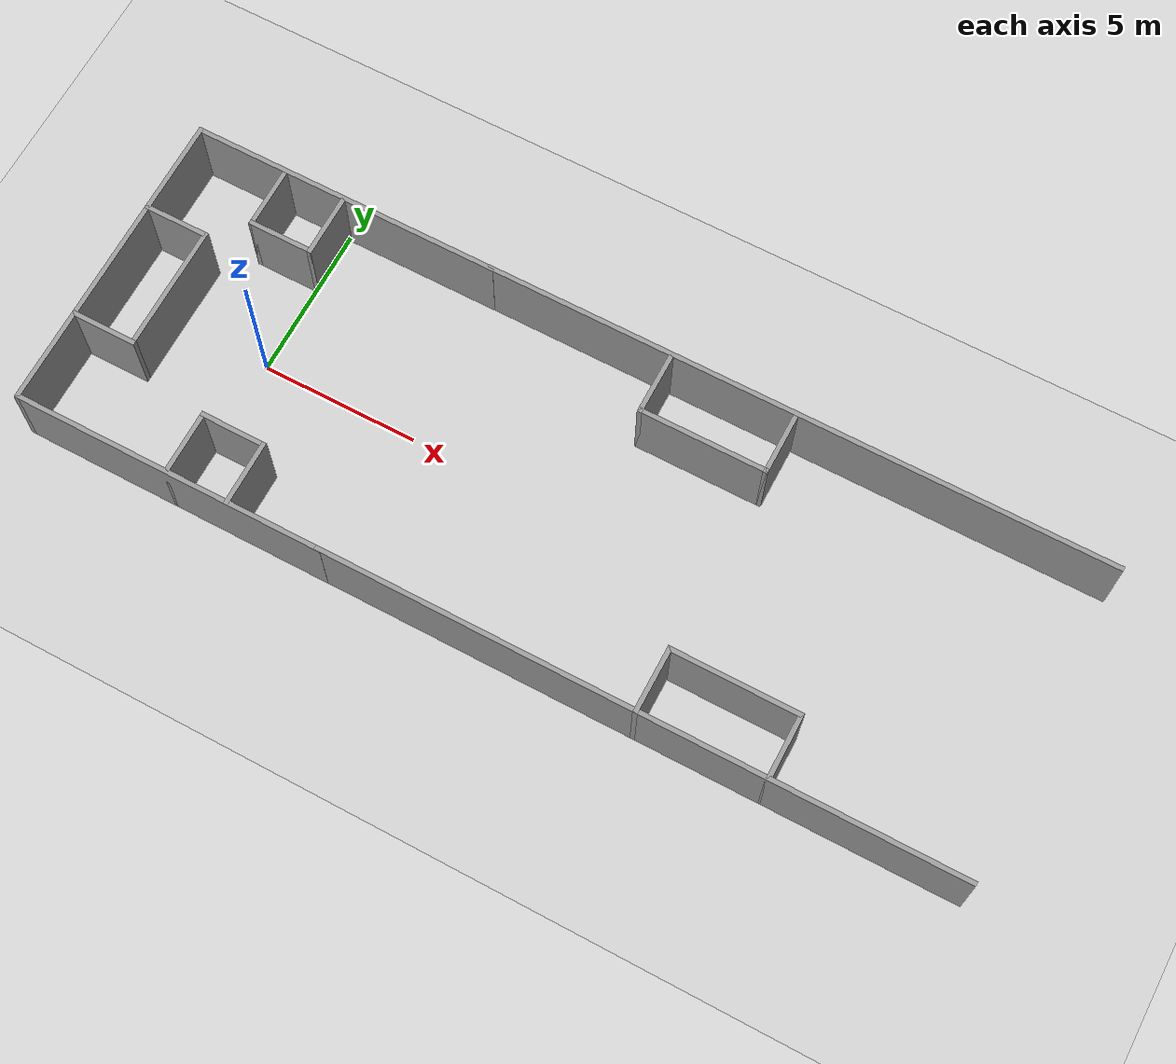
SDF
<sdf version="1.6">
 <world name="default">
  <model name="ground_plane">
   <static>1</static>
   <link name="link">
    <collision name="collision">
     <geometry><plane><normal>0 0 1</normal><size>100 100</size></plane></geometry>
     <surface><friction><ode><mu>100</mu><mu2>50</mu2></ode></friction></surface>
    </collision>
    <visual name="visual">
     <cast_shadows>0</cast_shadows>
     <geometry><plane><normal>0 0 1</normal><size>100 100</size></plane></geometry>
     <material>
      <script><uri>file://media/materials/scripts/gazebo.material</uri><name>Gazebo/Grey</name></script>
     </material>
    </visual>
   </link>
  </model>
  <model name="part_u_1">
   <link name="Wall_78">
    <collision name="Wall_78_Collision">
     <geometry><box><size>10.15 0.15 2.5</size></box></geometry>
     <pose>0 0 1.25 0 -0 0</pose>
    </collision>
    <visual name="Wall_78_Visual">
     <pose>0 0 1.25 0 -0 0</pose>
     <geometry><box><size>10.15 0.15 2.5</size></box></geometry>
     <material>
      <script><uri>file://media/materials/scripts/gazebo.material</uri><name>Gazebo/Grey</name></script>
      <ambient>1 1 1 1</ambient>
     </material>
    </visual>
    <pose>0 -5 0 0 -0 3.14159</pose>
   </link>
   <link name="Wall_79">
    <collision name="Wall_79_Collision">
     <geometry><box><size>10.15 0.15 2.5</size></box></geometry>
     <pose>0 0 1.25 0 -0 0</pose>
    </collision>
    <visual name="Wall_79_Visual">
     <pose>0 0 1.25 0 -0 0</pose>
     <geometry><box><size>10.15 0.15 2.5</size></box></geometry>
     <material>
      <script><uri>file://media/materials/scripts/gazebo.material</uri><name>Gazebo/Grey</name></script>
      <ambient>1 1 1 1</ambient>
     </material>
    </visual>
    <pose>-5 0 0 0 -0 1.5708</pose>
   </link>
   <link name="Wall_80">
    <collision name="Wall_80_Collision">
     <geometry><box><size>10.15 0.15 2.5</size></box></geometry>
     <pose>0 0 1.25 0 -0 0</pose>
    </collision>
    <visual name="Wall_80_Visual">
     <pose>0 0 1.25 0 -0 0</pose>
     <geometry><box><size>10.15 0.15 2.5</size></box></geometry>
     <material>
      <script><uri>file://media/materials/scripts/gazebo.material</uri><name>Gazebo/Grey</name></script>
      <ambient>1 1 1 1</ambient>
     </material>
    </visual>
    <pose>0 5 0 0 -0 0</pose>
   </link>
   <link name="Wall_82">
    <collision name="Wall_82_Collision">
     <geometry><box><size>2.15 0.15 2.5</size></box></geometry>
     <pose>0 0 1.25 0 -0 0</pose>
    </collision>
    <visual name="Wall_82_Visual">
     <pose>0 0 1.25 0 -0 0</pose>
     <geometry><box><size>2.15 0.15 2.5</size></box></geometry>
     <material>
      <script><uri>file://media/materials/scripts/gazebo.material</uri><name>Gazebo/Grey</name></script>
      <ambient>1 1 1 1</ambient>
     </material>
    </visual>
    <pose>-4 2 0 0 -0 0</pose>
   </link>
   <link name="Wall_83">
    <collision name="Wall_83_Collision">
     <geometry><box><size>4.15 0.15 2.5</size></box></geometry>
     <pose>0 0 1.25 0 -0 0</pose>
    </collision>
    <visual name="Wall_83_Visual">
     <pose>0 0 1.25 0 -0 0</pose>
     <geometry><box><size>4.15 0.15 2.5</size></box></geometry>
     <material>
      <script><uri>file://media/materials/scripts/gazebo.material</uri><name>Gazebo/Grey</name></script>
      <ambient>1 1 1 1</ambient>
     </material>
    </visual>
    <pose>-3 0 0 0 0 -1.5708</pose>
   </link>
   <link name="Wall_84">
    <collision name="Wall_84_Collision">
     <geometry><box><size>2.15 0.15 2.5</size></box></geometry>
     <pose>0 0 1.25 0 -0 0</pose>
    </collision>
    <visual name="Wall_84_Visual">
     <pose>0 0 1.25 0 -0 0</pose>
     <geometry><box><size>2.15 0.15 2.5</size></box></geometry>
     <material>
      <script><uri>file://media/materials/scripts/gazebo.material</uri><name>Gazebo/Grey</name></script>
      <ambient>1 1 1 1</ambient>
     </material>
    </visual>
    <pose>-4 -2 0 0 -0 3.14159</pose>
   </link>
   <link name="Wall_86">
    <collision name="Wall_86_Collision">
     <geometry><box><size>2.15 0.15 2.5</size></box></geometry>
     <pose>0 0 1.25 0 -0 0</pose>
    </collision>
    <visual name="Wall_86_Visual">
     <pose>0 0 1.25 0 -0 0</pose>
     <geometry><box><size>2.15 0.15 2.5</size></box></geometry>
     <material>
      <script><uri>file://media/materials/scripts/gazebo.material</uri><name>Gazebo/Grey</name></script>
      <ambient>1 1 1 1</ambient>
     </material>
    </visual>
    <pose>-2 4 0 0 0 -1.5708</pose>
   </link>
   <link name="Wall_87">
    <collision name="Wall_87_Collision">
     <geometry><box><size>2.15 0.15 2.5</size></box></geometry>
     <pose>0 0 1.25 0 -0 0</pose>
    </collision>
    <visual name="Wall_87_Visual">
     <pose>0 0 1.25 0 -0 0</pose>
     <geometry><box><size>2.15 0.15 2.5</size></box></geometry>
     <material>
      <script><uri>file://media/materials/scripts/gazebo.material</uri><name>Gazebo/Grey</name></script>
      <ambient>1 1 1 1</ambient>
     </material>
    </visual>
    <pose>-1 3 0 0 -0 0</pose>
   </link>
   <link name="Wall_88">
    <collision name="Wall_88_Collision">
     <geometry><box><size>2.15 0.15 2.5</size></box></geometry>
     <pose>0 0 1.25 0 -0 0</pose>
    </collision>
    <visual name="Wall_88_Visual">
     <pose>0 0 1.25 0 -0 0</pose>
     <geometry><box><size>2.15 0.15 2.5</size></box></geometry>
     <material>
      <script><uri>file://media/materials/scripts/gazebo.material</uri><name>Gazebo/Grey</name></script>
      <ambient>1 1 1 1</ambient>
     </material>
    </visual>
    <pose>0 4 0 0 -0 1.5708</pose>
   </link>
   <link name="Wall_90">
    <collision name="Wall_90_Collision">
     <geometry><box><size>2.15 0.15 2.5</size></box></geometry>
     <pose>0 0 1.25 0 -0 0</pose>
    </collision>
    <visual name="Wall_90_Visual">
     <pose>0 0 1.25 0 -0 0</pose>
     <geometry><box><size>2.15 0.15 2.5</size></box></geometry>
     <material>
      <script><uri>file://media/materials/scripts/gazebo.material</uri><name>Gazebo/Grey</name></script>
      <ambient>1 1 1 1</ambient>
     </material>
    </visual>
    <pose>0 -4 0 0 -0 1.5708</pose>
   </link>
   <link name="Wall_91">
    <collision name="Wall_91_Collision">
     <geometry><box><size>2.15 0.15 2.5</size></box></geometry>
     <pose>0 0 1.25 0 -0 0</pose>
    </collision>
    <visual name="Wall_91_Visual">
     <pose>0 0 1.25 0 -0 0</pose>
     <geometry><box><size>2.15 0.15 2.5</size></box></geometry>
     <material>
      <script><uri>file://media/materials/scripts/gazebo.material</uri><name>Gazebo/Grey</name></script>
      <ambient>1 1 1 1</ambient>
     </material>
    </visual>
    <pose>1 -3 0 0 -0 0</pose>
   </link>
   <link name="Wall_92">
    <collision name="Wall_92_Collision">
     <geometry><box><size>2.15 0.15 2.5</size></box></geometry>
     <pose>0 0 1.25 0 -0 0</pose>
    </collision>
    <visual name="Wall_92_Visual">
     <pose>0 0 1.25 0 -0 0</pose>
     <geometry><box><size>2.15 0.15 2.5</size></box></geometry>
     <material>
      <script><uri>file://media/materials/scripts/gazebo.material</uri><name>Gazebo/Grey</name></script>
      <ambient>1 1 1 1</ambient>
     </material>
    </visual>
    <pose>2 -4 0 0 0 -1.5708</pose>
   </link>
   <static>1</static>
  </model>
  <model name="part_line_0">
   <link name="Wall_15">
    <pose>0 -5 0 0 -0 0</pose>
    <visual name="Wall_15_Visual">
     <pose>0 0 1.25 0 -0 0</pose>
     <geometry><box><size>20.15 0.15 2.5</size></box></geometry>
     <material>
      <script><uri>file://media/materials/scripts/gazebo.material</uri><name>Gazebo/Grey</name></script>
      <ambient>1 1 1 1</ambient>
      <diffuse>0.7 0.7 0.7 1</diffuse>
      <specular>0.01 0.01 0.01 1</specular>
      <emissive>0 0 0 1</emissive>
     </material>
    </visual>
    <collision name="Wall_15_Collision">
     <pose>0 0 1.25 0 -0 0</pose>
     <geometry><box><size>20.15 0.15 2.5</size></box></geometry>
     <surface>
      <friction>
       <ode><mu>1</mu><mu2>1</mu2><fdir1>0 0 0</fdir1><slip1>0</slip1><slip2>0</slip2></ode>
       <torsional>
        <coefficient>1</coefficient>
        <patch_radius>0</patch_radius>
        <surface_radius>0</surface_radius>
        <use_patch_radius>1</use_patch_radius>
        <ode><slip>0</slip></ode>
       </torsional>
      </friction>
      <bounce><restitution_coefficient>0</restitution_coefficient><threshold>1e+06</threshold></bounce>
      <contact>
       <collide_without_contact>0</collide_without_contact>
       <collide_without_contact_bitmask>1</collide_without_contact_bitmask>
       <collide_bitmask>1</collide_bitmask>
       <ode>
        <soft_cfm>0</soft_cfm>
        <soft_erp>0.2</soft_erp>
        <kp>1e+13</kp>
        <kd>1</kd>
        <max_vel>0.01</max_vel>
        <min_depth>0</min_depth>
       </ode>
       <bullet>
        <split_impulse>1</split_impulse>
        <split_impulse_penetration_threshold>-0.01</split_impulse_penetration_threshold>
        <soft_cfm>0</soft_cfm>
        <soft_erp>0.2</soft_erp>
        <kp>1e+13</kp>
        <kd>1</kd>
       </bullet>
      </contact>
     </surface>
    </collision>
   </link>
   <link name="Wall_17">
    <pose>0 5 0 0 -0 0</pose>
    <visual name="Wall_17_Visual">
     <pose>0 0 1.25 0 -0 0</pose>
     <geometry><box><size>20.15 0.15 2.5</size></box></geometry>
     <material>
      <script><uri>file://media/materials/scripts/gazebo.material</uri><name>Gazebo/Grey</name></script>
      <ambient>1 1 1 1</ambient>
      <diffuse>0.7 0.7 0.7 1</diffuse>
      <specular>0.01 0.01 0.01 1</specular>
      <emissive>0 0 0 1</emissive>
     </material>
    </visual>
    <collision name="Wall_17_Collision">
     <pose>0 0 1.25 0 -0 0</pose>
     <geometry><box><size>20.15 0.15 2.5</size></box></geometry>
     <surface>
      <friction>
       <ode><mu>1</mu><mu2>1</mu2><fdir1>0 0 0</fdir1><slip1>0</slip1><slip2>0</slip2></ode>
       <torsional>
        <coefficient>1</coefficient>
        <patch_radius>0</patch_radius>
        <surface_radius>0</surface_radius>
        <use_patch_radius>1</use_patch_radius>
        <ode><slip>0</slip></ode>
       </torsional>
      </friction>
      <bounce><restitution_coefficient>0</restitution_coefficient><threshold>1e+06</threshold></bounce>
      <contact>
       <collide_without_contact>0</collide_without_contact>
       <collide_without_contact_bitmask>1</collide_without_contact_bitmask>
       <collide_bitmask>1</collide_bitmask>
       <ode>
        <soft_cfm>0</soft_cfm>
        <soft_erp>0.2</soft_erp>
        <kp>1e+13</kp>
        <kd>1</kd>
        <max_vel>0.01</max_vel>
        <min_depth>0</min_depth>
       </ode>
       <bullet>
        <split_impulse>1</split_impulse>
        <split_impulse_penetration_threshold>-0.01</split_impulse_penetration_threshold>
        <soft_cfm>0</soft_cfm>
        <soft_erp>0.2</soft_erp>
        <kp>1e+13</kp>
        <kd>1</kd>
       </bullet>
      </contact>
     </surface>
    </collision>
   </link>
   <link name="Wall_19">
    <pose>-4 4 0 0 0 -1.5708</pose>
    <visual name="Wall_19_Visual">
     <pose>0 0 1.25 0 -0 0</pose>
     <geometry><box><size>2.15 0.15 2.5</size></box></geometry>
     <material>
      <script><uri>file://media/materials/scripts/gazebo.material</uri><name>Gazebo/Grey</name></script>
      <ambient>1 1 1 1</ambient>
      <diffuse>0.7 0.7 0.7 1</diffuse>
      <specular>0.01 0.01 0.01 1</specular>
      <emissive>0 0 0 1</emissive>
     </material>
    </visual>
    <collision name="Wall_19_Collision">
     <pose>0 0 1.25 0 -0 0</pose>
     <geometry><box><size>2.15 0.15 2.5</size></box></geometry>
     <surface>
      <friction>
       <ode><mu>1</mu><mu2>1</mu2><fdir1>0 0 0</fdir1><slip1>0</slip1><slip2>0</slip2></ode>
       <torsional>
        <coefficient>1</coefficient>
        <patch_radius>0</patch_radius>
        <surface_radius>0</surface_radius>
        <use_patch_radius>1</use_patch_radius>
        <ode><slip>0</slip></ode>
       </torsional>
      </friction>
      <bounce><restitution_coefficient>0</restitution_coefficient><threshold>1e+06</threshold></bounce>
      <contact>
       <collide_without_contact>0</collide_without_contact>
       <collide_without_contact_bitmask>1</collide_without_contact_bitmask>
       <collide_bitmask>1</collide_bitmask>
       <ode>
        <soft_cfm>0</soft_cfm>
        <soft_erp>0.2</soft_erp>
        <kp>1e+13</kp>
        <kd>1</kd>
        <max_vel>0.01</max_vel>
        <min_depth>0</min_depth>
       </ode>
       <bullet>
        <split_impulse>1</split_impulse>
        <split_impulse_penetration_threshold>-0.01</split_impulse_penetration_threshold>
        <soft_cfm>0</soft_cfm>
        <soft_erp>0.2</soft_erp>
        <kp>1e+13</kp>
        <kd>1</kd>
       </bullet>
      </contact>
     </surface>
    </collision>
   </link>
   <link name="Wall_20">
    <pose>-2 3 0 0 -0 0</pose>
    <visual name="Wall_20_Visual">
     <pose>0 0 1.25 0 -0 0</pose>
     <geometry><box><size>4.15 0.15 2.5</size></box></geometry>
     <material>
      <script><uri>file://media/materials/scripts/gazebo.material</uri><name>Gazebo/Grey</name></script>
      <ambient>1 1 1 1</ambient>
      <diffuse>0.7 0.7 0.7 1</diffuse>
      <specular>0.01 0.01 0.01 1</specular>
      <emissive>0 0 0 1</emissive>
     </material>
    </visual>
    <collision name="Wall_20_Collision">
     <pose>0 0 1.25 0 -0 0</pose>
     <geometry><box><size>4.15 0.15 2.5</size></box></geometry>
     <surface>
      <friction>
       <ode><mu>1</mu><mu2>1</mu2><fdir1>0 0 0</fdir1><slip1>0</slip1><slip2>0</slip2></ode>
       <torsional>
        <coefficient>1</coefficient>
        <patch_radius>0</patch_radius>
        <surface_radius>0</surface_radius>
        <use_patch_radius>1</use_patch_radius>
        <ode><slip>0</slip></ode>
       </torsional>
      </friction>
      <bounce><restitution_coefficient>0</restitution_coefficient><threshold>1e+06</threshold></bounce>
      <contact>
       <collide_without_contact>0</collide_without_contact>
       <collide_without_contact_bitmask>1</collide_without_contact_bitmask>
       <collide_bitmask>1</collide_bitmask>
       <ode>
        <soft_cfm>0</soft_cfm>
        <soft_erp>0.2</soft_erp>
        <kp>1e+13</kp>
        <kd>1</kd>
        <max_vel>0.01</max_vel>
        <min_depth>0</min_depth>
       </ode>
       <bullet>
        <split_impulse>1</split_impulse>
        <split_impulse_penetration_threshold>-0.01</split_impulse_penetration_threshold>
        <soft_cfm>0</soft_cfm>
        <soft_erp>0.2</soft_erp>
        <kp>1e+13</kp>
        <kd>1</kd>
       </bullet>
      </contact>
     </surface>
    </collision>
   </link>
   <link name="Wall_21">
    <pose>0 4 0 0 -0 1.5708</pose>
    <visual name="Wall_21_Visual">
     <pose>0 0 1.25 0 -0 0</pose>
     <geometry><box><size>2.15 0.15 2.5</size></box></geometry>
     <material>
      <script><uri>file://media/materials/scripts/gazebo.material</uri><name>Gazebo/Grey</name></script>
      <ambient>1 1 1 1</ambient>
      <diffuse>0.7 0.7 0.7 1</diffuse>
      <specular>0.01 0.01 0.01 1</specular>
      <emissive>0 0 0 1</emissive>
     </material>
    </visual>
    <collision name="Wall_21_Collision">
     <pose>0 0 1.25 0 -0 0</pose>
     <geometry><box><size>2.15 0.15 2.5</size></box></geometry>
     <surface>
      <friction>
       <ode><mu>1</mu><mu2>1</mu2><fdir1>0 0 0</fdir1><slip1>0</slip1><slip2>0</slip2></ode>
       <torsional>
        <coefficient>1</coefficient>
        <patch_radius>0</patch_radius>
        <surface_radius>0</surface_radius>
        <use_patch_radius>1</use_patch_radius>
        <ode><slip>0</slip></ode>
       </torsional>
      </friction>
      <bounce><restitution_coefficient>0</restitution_coefficient><threshold>1e+06</threshold></bounce>
      <contact>
       <collide_without_contact>0</collide_without_contact>
       <collide_without_contact_bitmask>1</collide_without_contact_bitmask>
       <collide_bitmask>1</collide_bitmask>
       <ode>
        <soft_cfm>0</soft_cfm>
        <soft_erp>0.2</soft_erp>
        <kp>1e+13</kp>
        <kd>1</kd>
        <max_vel>0.01</max_vel>
        <min_depth>0</min_depth>
       </ode>
       <bullet>
        <split_impulse>1</split_impulse>
        <split_impulse_penetration_threshold>-0.01</split_impulse_penetration_threshold>
        <soft_cfm>0</soft_cfm>
        <soft_erp>0.2</soft_erp>
        <kp>1e+13</kp>
        <kd>1</kd>
       </bullet>
      </contact>
     </surface>
    </collision>
   </link>
   <link name="Wall_23">
    <pose>0 -4 0 0 -0 1.5708</pose>
    <visual name="Wall_23_Visual">
     <pose>0 0 1.25 0 -0 0</pose>
     <geometry><box><size>2.15 0.15 2.5</size></box></geometry>
     <material>
      <script><uri>file://media/materials/scripts/gazebo.material</uri><name>Gazebo/Grey</name></script>
      <ambient>1 1 1 1</ambient>
      <diffuse>0.7 0.7 0.7 1</diffuse>
      <specular>0.01 0.01 0.01 1</specular>
      <emissive>0 0 0 1</emissive>
     </material>
    </visual>
    <collision name="Wall_23_Collision">
     <pose>0 0 1.25 0 -0 0</pose>
     <geometry><box><size>2.15 0.15 2.5</size></box></geometry>
     <surface>
      <friction>
       <ode><mu>1</mu><mu2>1</mu2><fdir1>0 0 0</fdir1><slip1>0</slip1><slip2>0</slip2></ode>
       <torsional>
        <coefficient>1</coefficient>
        <patch_radius>0</patch_radius>
        <surface_radius>0</surface_radius>
        <use_patch_radius>1</use_patch_radius>
        <ode><slip>0</slip></ode>
       </torsional>
      </friction>
      <bounce><restitution_coefficient>0</restitution_coefficient><threshold>1e+06</threshold></bounce>
      <contact>
       <collide_without_contact>0</collide_without_contact>
       <collide_without_contact_bitmask>1</collide_without_contact_bitmask>
       <collide_bitmask>1</collide_bitmask>
       <ode>
        <soft_cfm>0</soft_cfm>
        <soft_erp>0.2</soft_erp>
        <kp>1e+13</kp>
        <kd>1</kd>
        <max_vel>0.01</max_vel>
        <min_depth>0</min_depth>
       </ode>
       <bullet>
        <split_impulse>1</split_impulse>
        <split_impulse_penetration_threshold>-0.01</split_impulse_penetration_threshold>
        <soft_cfm>0</soft_cfm>
        <soft_erp>0.2</soft_erp>
        <kp>1e+13</kp>
        <kd>1</kd>
       </bullet>
      </contact>
     </surface>
    </collision>
   </link>
   <link name="Wall_24">
    <pose>2 -3 0 0 -0 0</pose>
    <visual name="Wall_24_Visual">
     <pose>0 0 1.25 0 -0 0</pose>
     <geometry><box><size>4.15 0.15 2.5</size></box></geometry>
     <material>
      <script><uri>file://media/materials/scripts/gazebo.material</uri><name>Gazebo/Grey</name></script>
      <ambient>1 1 1 1</ambient>
      <diffuse>0.7 0.7 0.7 1</diffuse>
      <specular>0.01 0.01 0.01 1</specular>
      <emissive>0 0 0 1</emissive>
     </material>
    </visual>
    <collision name="Wall_24_Collision">
     <pose>0 0 1.25 0 -0 0</pose>
     <geometry><box><size>4.15 0.15 2.5</size></box></geometry>
     <surface>
      <friction>
       <ode><mu>1</mu><mu2>1</mu2><fdir1>0 0 0</fdir1><slip1>0</slip1><slip2>0</slip2></ode>
       <torsional>
        <coefficient>1</coefficient>
        <patch_radius>0</patch_radius>
        <surface_radius>0</surface_radius>
        <use_patch_radius>1</use_patch_radius>
        <ode><slip>0</slip></ode>
       </torsional>
      </friction>
      <bounce><restitution_coefficient>0</restitution_coefficient><threshold>1e+06</threshold></bounce>
      <contact>
       <collide_without_contact>0</collide_without_contact>
       <collide_without_contact_bitmask>1</collide_without_contact_bitmask>
       <collide_bitmask>1</collide_bitmask>
       <ode>
        <soft_cfm>0</soft_cfm>
        <soft_erp>0.2</soft_erp>
        <kp>1e+13</kp>
        <kd>1</kd>
        <max_vel>0.01</max_vel>
        <min_depth>0</min_depth>
       </ode>
       <bullet>
        <split_impulse>1</split_impulse>
        <split_impulse_penetration_threshold>-0.01</split_impulse_penetration_threshold>
        <soft_cfm>0</soft_cfm>
        <soft_erp>0.2</soft_erp>
        <kp>1e+13</kp>
        <kd>1</kd>
       </bullet>
      </contact>
     </surface>
    </collision>
   </link>
   <link name="Wall_25">
    <pose>4 -4 0 0 0 -1.5708</pose>
    <visual name="Wall_25_Visual">
     <pose>0 0 1.25 0 -0 0</pose>
     <geometry><box><size>2.15 0.15 2.5</size></box></geometry>
     <material>
      <script><uri>file://media/materials/scripts/gazebo.material</uri><name>Gazebo/Grey</name></script>
      <ambient>1 1 1 1</ambient>
      <diffuse>0.7 0.7 0.7 1</diffuse>
      <specular>0.01 0.01 0.01 1</specular>
      <emissive>0 0 0 1</emissive>
     </material>
    </visual>
    <collision name="Wall_25_Collision">
     <pose>0 0 1.25 0 -0 0</pose>
     <geometry><box><size>2.15 0.15 2.5</size></box></geometry>
     <surface>
      <friction>
       <ode><mu>1</mu><mu2>1</mu2><fdir1>0 0 0</fdir1><slip1>0</slip1><slip2>0</slip2></ode>
       <torsional>
        <coefficient>1</coefficient>
        <patch_radius>0</patch_radius>
        <surface_radius>0</surface_radius>
        <use_patch_radius>1</use_patch_radius>
        <ode><slip>0</slip></ode>
       </torsional>
      </friction>
      <bounce><restitution_coefficient>0</restitution_coefficient><threshold>1e+06</threshold></bounce>
      <contact>
       <collide_without_contact>0</collide_without_contact>
       <collide_without_contact_bitmask>1</collide_without_contact_bitmask>
       <collide_bitmask>1</collide_bitmask>
       <ode>
        <soft_cfm>0</soft_cfm>
        <soft_erp>0.2</soft_erp>
        <kp>1e+13</kp>
        <kd>1</kd>
        <max_vel>0.01</max_vel>
        <min_depth>0</min_depth>
       </ode>
       <bullet>
        <split_impulse>1</split_impulse>
        <split_impulse_penetration_threshold>-0.01</split_impulse_penetration_threshold>
        <soft_cfm>0</soft_cfm>
        <soft_erp>0.2</soft_erp>
        <kp>1e+13</kp>
        <kd>1</kd>
       </bullet>
      </contact>
     </surface>
    </collision>
   </link>
   <static>1</static>
   <pose>14.9484 0.00516 0 0 -0 0</pose>
  </model>
 </world>
</sdf>
